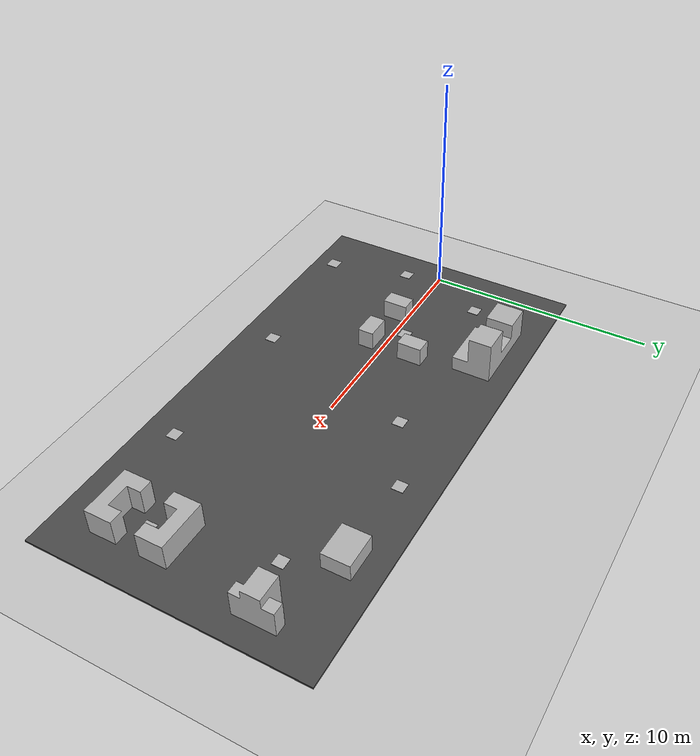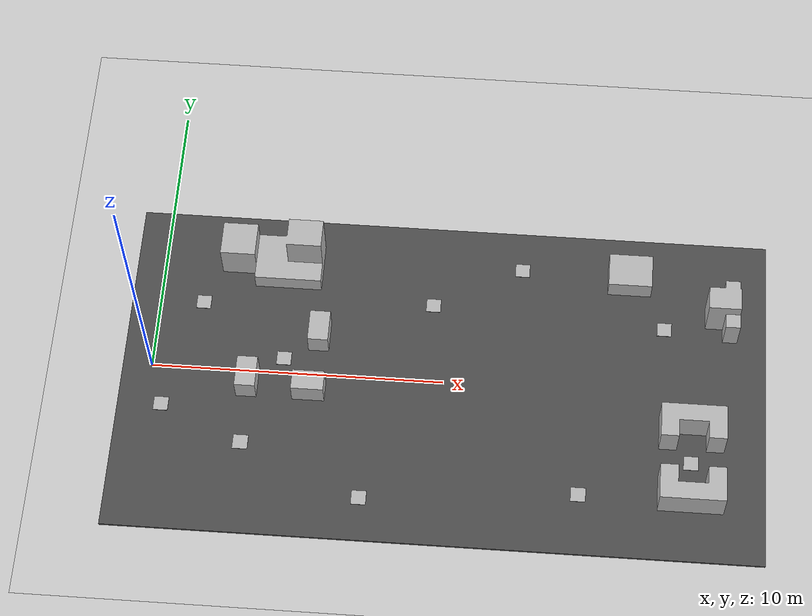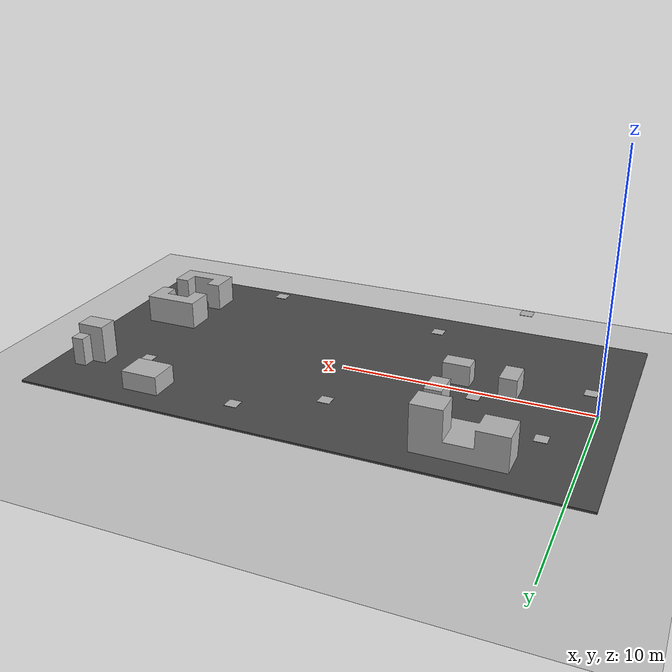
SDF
<sdf version="1.5">
 <world name="default">
  <include><uri>model://sun</uri></include>
  <include><uri>model://ground_plane</uri></include>
  <include><uri>model://asphalt_plane_long</uri><pose>10 0 0 0 0 0</pose></include>
  <physics name="default_physics" default="0" type="ode">
   <gravity>0 0 -9.8066</gravity>
   <ode>
    <solver>
     <type>quick</type>
     <iters>10</iters>
     <sor>1.3</sor>
     <use_dynamic_moi_rescaling>0</use_dynamic_moi_rescaling>
    </solver>
    <constraints>
     <cfm>0</cfm>
     <erp>0.2</erp>
     <contact_max_correcting_vel>100</contact_max_correcting_vel>
     <contact_surface_layer>0.001</contact_surface_layer>
    </constraints>
   </ode>
   <max_step_size>0.004</max_step_size>
   <real_time_factor>1</real_time_factor>
   <real_time_update_rate>250</real_time_update_rate>
   <magnetic_field>6.0e-6 2.3e-5 -4.2e-5</magnetic_field>
  </physics>
  <include><uri>model://obs05</uri><pose>3.243293 -0.128948 0 0 0 0</pose></include>
  <include><uri>model://obs051</uri><pose>5.140757 -0.747989 0 0 0 1.571485</pose></include>
  <include><uri>model://obs052</uri><pose>5.547875 1.775697 0 0 0 0</pose></include>
  <include><uri>model://obs01</uri><pose>3.709147 4.260170 0 0 0 0</pose></include>
  <include><uri>model://obs02</uri><pose>16.178386 4.442025 0 0 0 0</pose></include>
  <include><uri>model://obs04</uri><pose>19.27071 2.981382 0 0 0 1.572588</pose></include>
  <include><uri>model://obs03</uri><pose>18.215857 -1.527564 0 0 0 0</pose></include>
  <include><uri>model://obs031</uri><pose>18.797939 -3.530739 0 0 0 3.1415</pose></include>
  <model name="ARUCO01">
   <pose>0.5 -1.5 0.12 0 0 1.57</pose>
   <static>true</static>
   <link name="build_link">
    <collision name="build_collision"><geometry><box><size>0.5 0.5 0.001</size></box></geometry></collision>
    <visual name="build_visual">
     <geometry><box><size>0.5 0.5 0.01</size></box></geometry>
     <material>
      <script>
       <uri>model://build/materials/scripts</uri>
       <uri>model://build/materials/textures</uri>
       <name>buildMat/aruco1</name>
      </script>
     </material>
    </visual>
   </link>
  </model>
  <model name="ARUCO02">
   <pose>18.5 -2.5 0.12 0 0 1.57</pose>
   <static>true</static>
   <link name="build_link">
    <collision name="build_collision"><geometry><box><size>0.5 0.5 0.001</size></box></geometry></collision>
    <visual name="build_visual">
     <geometry><box><size>0.5 0.5 0.01</size></box></geometry>
     <material>
      <script>
       <uri>model://build/materials/scripts</uri>
       <uri>model://build/materials/textures</uri>
       <name>buildMat/aruco2</name>
      </script>
     </material>
    </visual>
   </link>
  </model>
  <model name="ARUCO03">
   <pose>7.5 -4.5 0.12 0 0 1.57</pose>
   <static>true</static>
   <link name="build_link">
    <collision name="build_collision"><geometry><box><size>0.5 0.5 0.001</size></box></geometry></collision>
    <visual name="build_visual">
     <geometry><box><size>0.5 0.5 0.01</size></box></geometry>
     <material>
      <script>
       <uri>model://build/materials/scripts</uri>
       <uri>model://build/materials/textures</uri>
       <name>buildMat/aruco3</name>
      </script>
     </material>
    </visual>
   </link>
  </model>
  <model name="ARUCO04">
   <pose>1.5 2.5 0.12 0 0 1.57</pose>
   <static>true</static>
   <link name="build_link">
    <collision name="build_collision"><geometry><box><size>0.5 0.5 0.001</size></box></geometry></collision>
    <visual name="build_visual">
     <geometry><box><size>0.5 0.5 0.01</size></box></geometry>
     <material>
      <script>
       <uri>model://build/materials/scripts</uri>
       <uri>model://build/materials/textures</uri>
       <name>buildMat/aruco4</name>
      </script>
     </material>
    </visual>
   </link>
  </model>
  <model name="ARUCO05">
   <pose>4.5 0.5 0.12 0 0 1.57</pose>
   <static>true</static>
   <link name="build_link">
    <collision name="build_collision"><geometry><box><size>0.5 0.5 0.001</size></box></geometry></collision>
    <visual name="build_visual">
     <geometry><box><size>0.5 0.5 0.01</size></box></geometry>
     <material>
      <script>
       <uri>model://build/materials/scripts</uri>
       <uri>model://build/materials/textures</uri>
       <name>buildMat/aruco5</name>
      </script>
     </material>
    </visual>
   </link>
  </model>
  <model name="ARUCO06">
   <pose>17.5 2.5 0.12 0 0 1.57</pose>
   <static>true</static>
   <link name="build_link">
    <collision name="build_collision"><geometry><box><size>0.5 0.5 0.001</size></box></geometry></collision>
    <visual name="build_visual">
     <geometry><box><size>0.5 0.5 0.01</size></box></geometry>
     <material>
      <script>
       <uri>model://build/materials/scripts</uri>
       <uri>model://build/materials/textures</uri>
       <name>buildMat/aruco6</name>
      </script>
     </material>
    </visual>
   </link>
  </model>
  <model name="ARUCO07">
   <pose>14.75 -4.15 0.71 0 0 1.57</pose>
   <static>true</static>
   <link name="build_link">
    <collision name="build_collision"><geometry><box><size>0.5 0.5 0.001</size></box></geometry></collision>
    <visual name="build_visual">
     <geometry><box><size>0.5 0.5 0.01</size></box></geometry>
     <material>
      <script>
       <uri>model://build/materials/scripts</uri>
       <uri>model://build/materials/textures</uri>
       <name>buildMat/aruco7</name>
      </script>
     </material>
    </visual>
   </link>
  </model>
  <model name="ARUCO08">
   <pose>9.48 2.9 0.12 0 0 1.57</pose>
   <static>true</static>
   <link name="build_link">
    <collision name="build_collision"><geometry><box><size>0.5 0.5 0.001</size></box></geometry></collision>
    <visual name="build_visual">
     <geometry><box><size>0.5 0.5 0.01</size></box></geometry>
     <material>
      <script>
       <uri>model://build/materials/scripts</uri>
       <uri>model://build/materials/textures</uri>
       <name>buildMat/aruco8</name>
      </script>
     </material>
    </visual>
   </link>
  </model>
  <model name="ARUCO09">
   <pose>12.5 4.5 0.12 0 0 1.57</pose>
   <static>true</static>
   <link name="build_link">
    <collision name="build_collision"><geometry><box><size>0.5 0.5 0.001</size></box></geometry></collision>
    <visual name="build_visual">
     <geometry><box><size>0.5 0.5 0.01</size></box></geometry>
     <material>
      <script>
       <uri>model://build/materials/scripts</uri>
       <uri>model://build/materials/textures</uri>
       <name>buildMat/aruco9</name>
      </script>
     </material>
    </visual>
   </link>
  </model>
  <model name="ARUCO10">
   <pose>3.6 -3.6 2.01 0 0 1.57</pose>
   <static>true</static>
   <link name="build_link">
    <collision name="build_collision"><geometry><box><size>0.5 0.5 0.001</size></box></geometry></collision>
    <visual name="build_visual">
     <geometry><box><size>0.5 0.5 0.01</size></box></geometry>
     <material>
      <script>
       <uri>model://build/materials/scripts</uri>
       <uri>model://build/materials/textures</uri>
       <name>buildMat/aruco10</name>
      </script>
     </material>
    </visual>
   </link>
  </model>
 </world>
</sdf>

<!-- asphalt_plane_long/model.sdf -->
<sdf version="1.5">
  <model name="asphalt_plane_long">
    <static>true</static>
    <link name="link">
      <collision name="collision">
        <geometry>
          <box>
            <size>22 12 .1</size>
          </box>
        </geometry>
      </collision>
      <visual name="visual">
        <cast_shadows>false</cast_shadows>
        <geometry>
          <box>
            <size>22 12 .1</size>
          </box>
        </geometry>
        <material>
          <script>
            <uri>model://asphalt_plane_long/materials/scripts</uri>
            <uri>model://asphalt_plane_long/materials/textures</uri>
            <name>vrc/asphalt</name>
          </script>
        </material>
      </visual>
    </link>
  </model>
</sdf>

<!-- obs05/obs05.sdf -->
<sdf version="1.5">
  <model name='obs05'>
    <static>true</static>
    <link name="link">
      <collision name='collision'>
        <geometry>
          <mesh>
            <uri>model://obs05/mesh/Obs05.stl</uri>
            <scale>0.01 0.01 0.01</scale>
          </mesh>
        </geometry>
      </collision>

      <visual name='visual'>
        <geometry>
          <mesh>
            <uri>model://obs05/mesh/Obs05.stl</uri>
            <scale>0.01 0.01 0.01</scale>
          </mesh>
        </geometry>
        <material>
          <script>
            <uri>model://obs05/materials/scripts</uri>
            <uri>model://obs05/materials/textures</uri>
            <name>buildMat/Tex5</name>
          </script>
        </material>
      </visual>
    </link>
  </model>
</sdf>

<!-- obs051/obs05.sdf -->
<sdf version="1.5">
  <model name='obs051'>
    <static>true</static>
    <link name="link">
      <collision name='collision'>
        <geometry>
          <mesh>
            <uri>model://obs05/mesh/Obs05.stl</uri>
            <scale>0.01 0.01 0.01</scale>
          </mesh>
        </geometry>
      </collision>

      <visual name='visual'>
        <geometry>
          <mesh>
            <uri>model://obs05/mesh/Obs05.stl</uri>
            <scale>0.01 0.01 0.01</scale>
          </mesh>
        </geometry>
        <material>
          <script>
            <uri>model://obs05/materials/scripts</uri>
            <uri>model://obs05/materials/textures</uri>
            <name>buildMat/Tex5</name>
          </script>
        </material>
      </visual>
    </link>
  </model>
</sdf>

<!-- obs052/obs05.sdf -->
<sdf version="1.5">
  <model name='obs052'>
    <static>true</static>
    <link name="link">
      <collision name='collision'>
        <geometry>
          <mesh>
            <uri>model://obs05/mesh/Obs05.stl</uri>
            <scale>0.01 0.01 0.01</scale>
          </mesh>
        </geometry>
      </collision>

      <visual name='visual'>
        <geometry>
          <mesh>
            <uri>model://obs05/mesh/Obs05.stl</uri>
            <scale>0.01 0.01 0.01</scale>
          </mesh>
        </geometry>
        <material>
          <script>
            <uri>model://obs05/materials/scripts</uri>
            <uri>model://obs05/materials/textures</uri>
            <name>buildMat/Tex5</name>
          </script>
        </material>
      </visual>
    </link>
  </model>
</sdf>

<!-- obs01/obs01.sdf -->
<sdf version="1.5">
  <model name='obs01'>
    <static>true</static>
    <link name="link">
      <collision name='collision'>
        <geometry>
          <mesh>
            <uri>model://obs01/mesh/Obs01.stl</uri>
            <scale>0.01 0.01 0.01</scale>
          </mesh>
        </geometry>
      </collision>

      <visual name='visual'>
        <geometry>
          <mesh>
            <uri>model://obs01/mesh/Obs01.stl</uri>
            <scale>0.01 0.01 0.01</scale>
          </mesh>
        </geometry>
        <material>
          <script>
            <uri>model://obs01/materials/scripts</uri>
            <uri>model://obs01/materials/textures</uri>
            <name>buildMat/Tex1</name>
          </script>
        </material>
      </visual>
    </link>
  </model>
</sdf>

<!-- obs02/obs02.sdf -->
<sdf version="1.5">
  <model name='obs02'>
    <static>true</static>
    <link name="link">
      <collision name='collision'>
        <geometry>
          <mesh>
            <uri>model://obs02/mesh/Obs02.stl</uri>
            <scale>0.01 0.01 0.01</scale>
          </mesh>
        </geometry>
      </collision>

      <visual name='visual'>
        <geometry>
          <mesh>
            <uri>model://obs02/mesh/Obs02.stl</uri>
            <scale>0.01 0.01 0.01</scale>
          </mesh>
        </geometry>
        <material>
          <script>
            <uri>model://obs02/materials/scripts</uri>
            <uri>model://obs02/materials/textures</uri>
            <name>buildMat/Tex2</name>
          </script>
        </material>
      </visual>
    </link>
  </model>
</sdf>

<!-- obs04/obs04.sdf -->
<sdf version="1.5">
  <model name='obs04'>
    <static>true</static>
    <link name="link">
      <collision name='collision'>
        <geometry>
          <mesh>
            <uri>model://obs04/mesh/Obs04.stl</uri>
            <scale>0.01 0.01 0.01</scale>
          </mesh>
        </geometry>
      </collision>

      <visual name='visual'>
        <geometry>
          <mesh>
            <uri>model://obs04/mesh/Obs04.stl</uri>
            <scale>0.01 0.01 0.01</scale>
          </mesh>
        </geometry>
        <material>
          <script>
            <uri>model://obs04/materials/scripts</uri>
            <uri>model://obs04/materials/textures</uri>
            <name>buildMat/Tex4</name>
          </script>
        </material>
      </visual>
    </link>
  </model>
</sdf>

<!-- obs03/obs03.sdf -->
<sdf version="1.5">
  <model name='obs03'>
    <static>true</static>
    <link name="link">
      <collision name='collision'>
        <geometry>
          <mesh>
            <uri>model://obs03/mesh/Obs03.stl</uri>
            <scale>0.01 0.01 0.01</scale>
          </mesh>
        </geometry>
      </collision>

      <visual name='visual'>
        <geometry>
          <mesh>
            <uri>model://obs03/mesh/Obs03.stl</uri>
            <scale>0.01 0.01 0.01</scale>
          </mesh>
        </geometry>
        <material>
          <script>
            <uri>model://obs03/materials/scripts</uri>
            <uri>model://obs03/materials/textures</uri>
            <name>buildMat/Tex3</name>
          </script>
        </material>
      </visual>
    </link>
  </model>
</sdf>

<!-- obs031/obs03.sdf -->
<sdf version="1.5">
  <model name='obs031'>
    <static>true</static>
    <link name="link">
      <collision name='collision'>
        <geometry>
          <mesh>
            <uri>model://obs03/mesh/Obs03.stl</uri>
            <scale>0.01 0.01 0.01</scale>
          </mesh>
        </geometry>
      </collision>

      <visual name='visual'>
        <geometry>
          <mesh>
            <uri>model://obs03/mesh/Obs03.stl</uri>
            <scale>0.01 0.01 0.01</scale>
          </mesh>
        </geometry>
        <material>
          <script>
            <uri>model://obs03/materials/scripts</uri>
            <uri>model://obs03/materials/textures</uri>
            <name>buildMat/Tex3</name>
          </script>
        </material>
      </visual>
    </link>
  </model>
</sdf>
